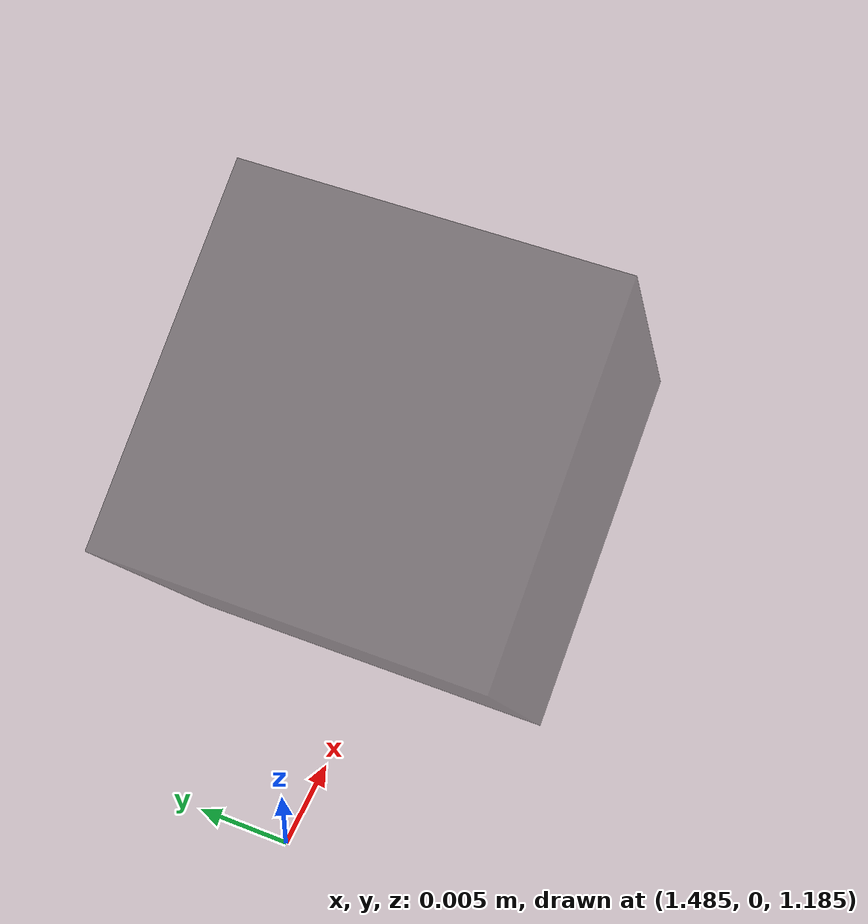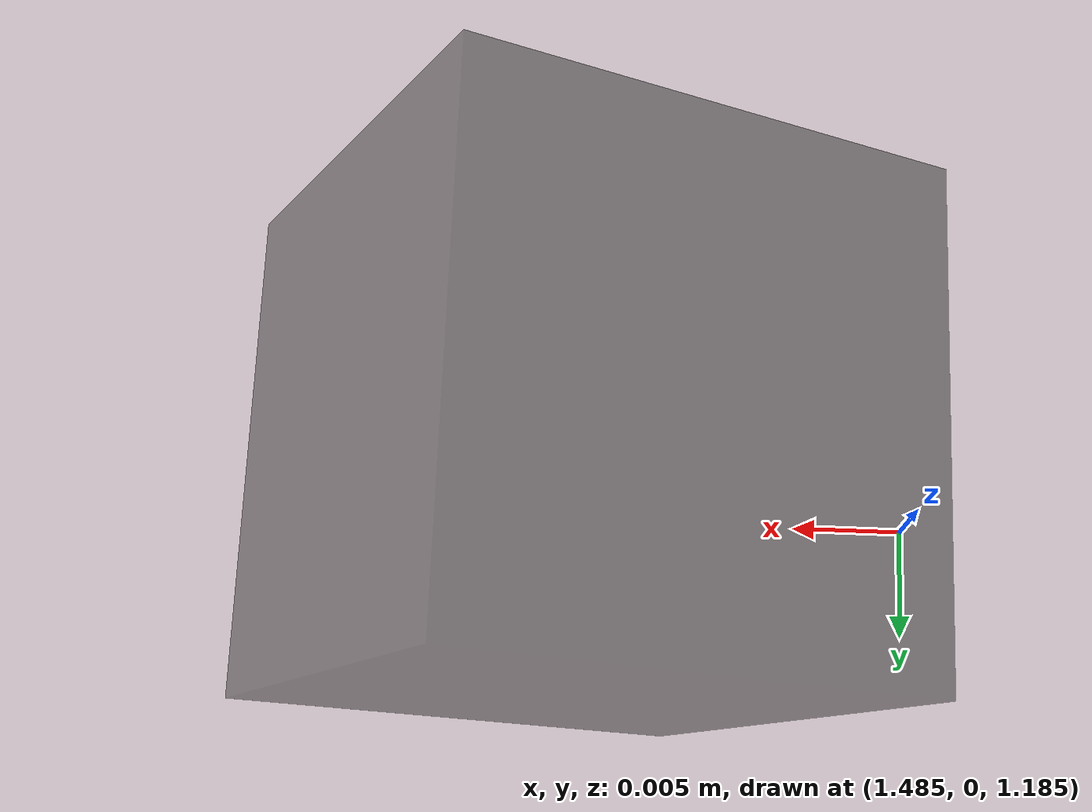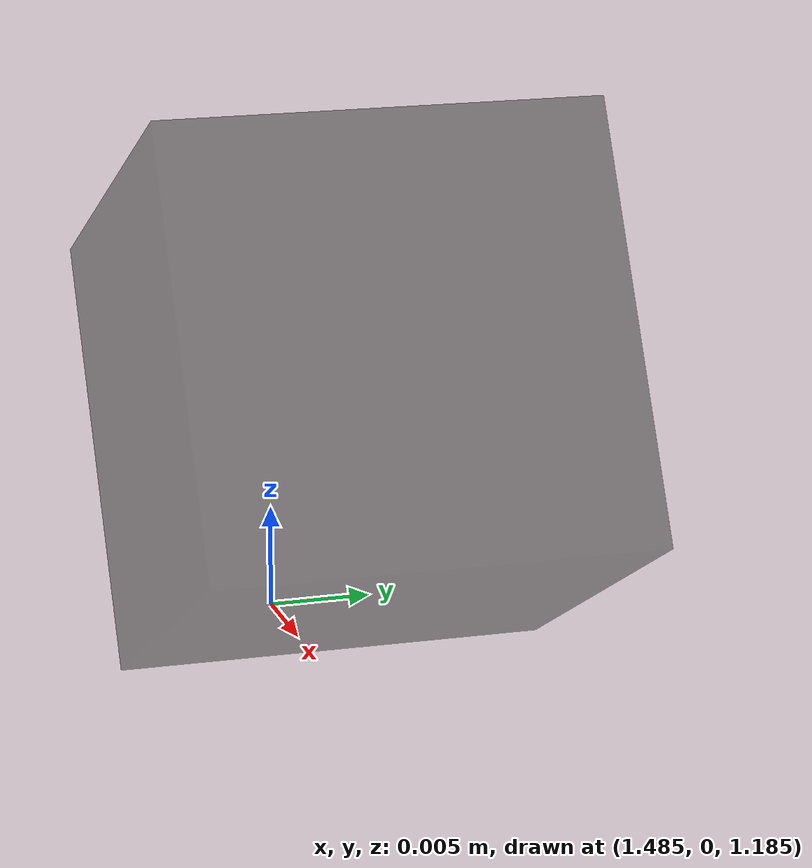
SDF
<?xml version="1.0" ?>
<sdf version="1.11">
  <world name="default">
    <!-- Required for sim to run and advertise /world/default/create -->
    <plugin filename="gz-sim-physics-system" name="gz::sim::systems::Physics"/>
    <plugin filename="gz-sim-scene-broadcaster-system" name="gz::sim::systems::SceneBroadcaster"/>
    <plugin filename="gz-sim-user-commands-system" name="gz::sim::systems::UserCommands"/>
    <!-- Camera sensor (wrist camera). Use ogre for better software-rendering compatibility. -->
    <plugin filename="gz-sim-sensors-system" name="gz::sim::systems::Sensors">
      <render_engine>ogre</render_engine>
    </plugin>
    <light type="directional" name="sun">
      <cast_shadows>true</cast_shadows>
      <pose>0 0 10 0 0 0</pose>
      <diffuse>1 1 1 1</diffuse>
      <specular>0.2 0.2 0.2 1</specular>
      <direction>-0.5 0.1 -0.9</direction>
    </light>
    <model name="ground_plane">
      <static>true</static>
      <link name="link">
        <collision name="collision">
          <geometry>
            <plane>
              <normal>0 0 1</normal>
              <size>100 100</size>
            </plane>
          </geometry>
        </collision>
        <visual name="visual">
          <geometry>
            <plane>
              <normal>0 0 1</normal>
              <size>100 100</size>
            </plane>
          </geometry>
          <material>
            <ambient>0.8 0.8 0.8 1</ambient>
            <diffuse>0.8 0.8 0.8 1</diffuse>
            <specular>0.1 0.1 0.1 1</specular>
          </material>
        </visual>
      </link>
    </model>
    <!-- External camera (VLA-style third-person view of the robot) -->
    <model name="external_camera">
      <static>true</static>
      <pose>1.5 0 1.2 0 0.5 3.14159</pose>
      <link name="link">
        <inertial>
          <mass>0.01</mass>
          <inertia>
            <ixx>1e-6</ixx><ixy>0</ixy><ixz>0</ixz>
            <iyy>1e-6</iyy><iyz>0</iyz><izz>1e-6</izz>
          </inertia>
        </inertial>
        <collision name="collision">
          <geometry>
            <box><size>0.02 0.02 0.02</size></box>
          </geometry>
        </collision>
        <visual name="visual">
          <geometry>
            <box><size>0.02 0.02 0.02</size></box>
          </geometry>
          <material>
            <ambient>0.2 0.2 0.2 0.5</ambient>
            <diffuse>0.2 0.2 0.2 0.5</diffuse>
            <specular>0.1 0.1 0.1 1</specular>
          </material>
        </visual>
        <sensor name="camera" type="camera">
          <camera>
            <horizontal_fov>1.047</horizontal_fov>
            <image>
              <width>640</width>
              <height>480</height>
            </image>
            <clip>
              <near>0.1</near>
              <far>100</far>
            </clip>
          </camera>
          <always_on>1</always_on>
          <update_rate>30</update_rate>
          <visualize>true</visualize>
          <!-- Leave topic empty so gz-sim scopes it to /model/external_camera/link/link/sensor/camera/image -->
        </sensor>
      </link>
    </model>
  </world>
</sdf>
